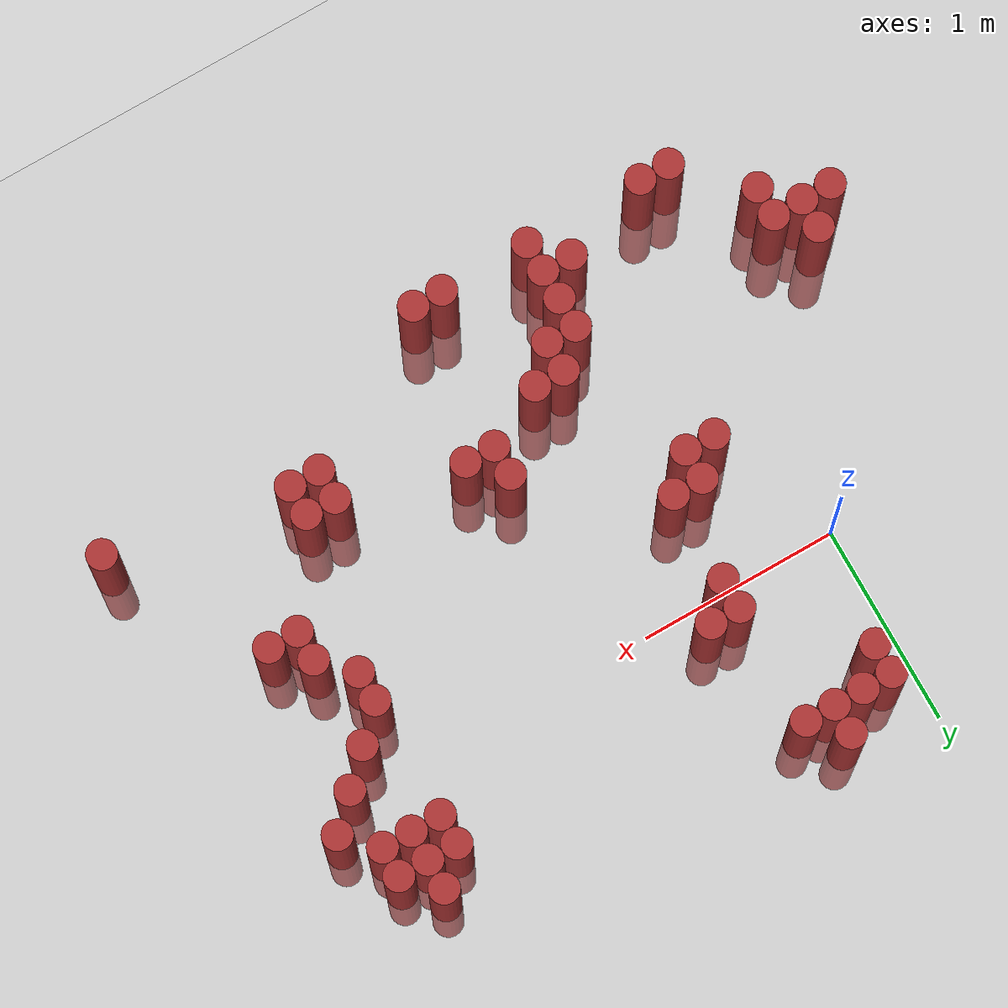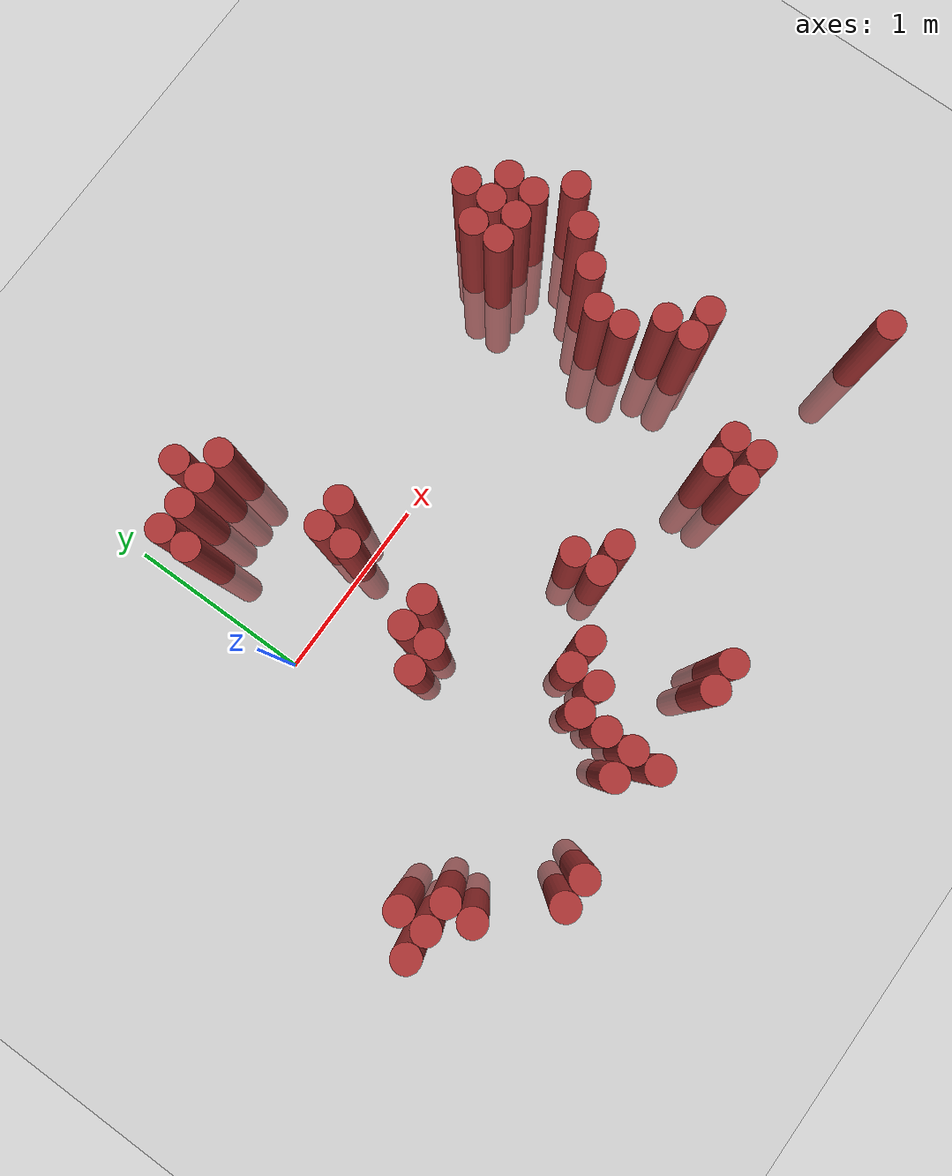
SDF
<sdf version="1.6">
 <world name="default">
  <model name="ground_plane">
   <static>1</static>
   <link name="link">
    <collision name="collision">
     <geometry><plane><normal>0 0 1</normal><size>100 100</size></plane></geometry>
     <surface><friction><ode><mu>100</mu><mu2>50</mu2></ode></friction></surface>
    </collision>
    <visual name="visual">
     <cast_shadows>0</cast_shadows>
     <geometry><plane><normal>0 0 1</normal><size>100 100</size></plane></geometry>
     <material>
      <script><uri>file://media/materials/scripts/gazebo.material</uri><name>Gazebo/Grey</name></script>
     </material>
    </visual>
   </link>
  </model>
  <model name="unit_cylinder_311">
   <static>1</static>
   <pose>-0.725000 -1.325000 0.000000 0.000000 0.000000 0.000000</pose>
   <link name="link">
    <inertial>
     <mass>1</mass>
     <inertia><ixx>0.145833</ixx><ixy>0</ixy><ixz>0</ixz><iyy>0.145833</iyy><iyz>0</iyz><izz>0.125</izz></inertia>
    </inertial>
    <collision name="collision">
     <geometry><cylinder><radius>0.075000</radius><length>1.5</length></cylinder></geometry>
    </collision>
    <visual name="visual">
     <geometry><cylinder><radius>0.075000</radius><length>1.5</length></cylinder></geometry>
     <material>
      <ambient>0.648000 0.192000 0.192000 1</ambient>
      <diffuse>0.648000 0.192000 0.192000 1</diffuse>
     </material>
     <material>
      <script><name>Gazebo/Grey</name><uri>file://media/materials/scripts/gazebo.material</uri></script>
     </material>
    </visual>
   </link>
  </model>
  <model name="unit_cylinder_314">
   <static>1</static>
   <pose>-0.575000 -1.325000 0.000000 0.000000 0.000000 0.000000</pose>
   <link name="link">
    <inertial>
     <mass>1</mass>
     <inertia><ixx>0.145833</ixx><ixy>0</ixy><ixz>0</ixz><iyy>0.145833</iyy><iyz>0</iyz><izz>0.125</izz></inertia>
    </inertial>
    <collision name="collision">
     <geometry><cylinder><radius>0.075000</radius><length>1.5</length></cylinder></geometry>
    </collision>
    <visual name="visual">
     <geometry><cylinder><radius>0.075000</radius><length>1.5</length></cylinder></geometry>
     <material>
      <ambient>0.648000 0.192000 0.192000 1</ambient>
      <diffuse>0.648000 0.192000 0.192000 1</diffuse>
     </material>
     <material>
      <script><name>Gazebo/Grey</name><uri>file://media/materials/scripts/gazebo.material</uri></script>
     </material>
    </visual>
   </link>
  </model>
  <model name="unit_cylinder_315">
   <static>1</static>
   <pose>-0.575000 -1.175000 0.000000 0.000000 0.000000 0.000000</pose>
   <link name="link">
    <inertial>
     <mass>1</mass>
     <inertia><ixx>0.145833</ixx><ixy>0</ixy><ixz>0</ixz><iyy>0.145833</iyy><iyz>0</iyz><izz>0.125</izz></inertia>
    </inertial>
    <collision name="collision">
     <geometry><cylinder><radius>0.075000</radius><length>1.5</length></cylinder></geometry>
    </collision>
    <visual name="visual">
     <geometry><cylinder><radius>0.075000</radius><length>1.5</length></cylinder></geometry>
     <material>
      <ambient>0.648000 0.192000 0.192000 1</ambient>
      <diffuse>0.648000 0.192000 0.192000 1</diffuse>
     </material>
     <material>
      <script><name>Gazebo/Grey</name><uri>file://media/materials/scripts/gazebo.material</uri></script>
     </material>
    </visual>
   </link>
  </model>
  <model name="unit_cylinder_319">
   <static>1</static>
   <pose>-0.425000 -1.475000 0.000000 0.000000 0.000000 0.000000</pose>
   <link name="link">
    <inertial>
     <mass>1</mass>
     <inertia><ixx>0.145833</ixx><ixy>0</ixy><ixz>0</ixz><iyy>0.145833</iyy><iyz>0</iyz><izz>0.125</izz></inertia>
    </inertial>
    <collision name="collision">
     <geometry><cylinder><radius>0.075000</radius><length>1.5</length></cylinder></geometry>
    </collision>
    <visual name="visual">
     <geometry><cylinder><radius>0.075000</radius><length>1.5</length></cylinder></geometry>
     <material>
      <ambient>0.648000 0.192000 0.192000 1</ambient>
      <diffuse>0.648000 0.192000 0.192000 1</diffuse>
     </material>
     <material>
      <script><name>Gazebo/Grey</name><uri>file://media/materials/scripts/gazebo.material</uri></script>
     </material>
    </visual>
   </link>
  </model>
  <model name="unit_cylinder_320">
   <static>1</static>
   <pose>-0.425000 -1.325000 0.000000 0.000000 0.000000 0.000000</pose>
   <link name="link">
    <inertial>
     <mass>1</mass>
     <inertia><ixx>0.145833</ixx><ixy>0</ixy><ixz>0</ixz><iyy>0.145833</iyy><iyz>0</iyz><izz>0.125</izz></inertia>
    </inertial>
    <collision name="collision">
     <geometry><cylinder><radius>0.075000</radius><length>1.5</length></cylinder></geometry>
    </collision>
    <visual name="visual">
     <geometry><cylinder><radius>0.075000</radius><length>1.5</length></cylinder></geometry>
     <material>
      <ambient>0.648000 0.192000 0.192000 1</ambient>
      <diffuse>0.648000 0.192000 0.192000 1</diffuse>
     </material>
     <material>
      <script><name>Gazebo/Grey</name><uri>file://media/materials/scripts/gazebo.material</uri></script>
     </material>
    </visual>
   </link>
  </model>
  <model name="unit_cylinder_326">
   <static>1</static>
   <pose>-0.125000 -1.775000 0.000000 0.000000 0.000000 0.000000</pose>
   <link name="link">
    <inertial>
     <mass>1</mass>
     <inertia><ixx>0.145833</ixx><ixy>0</ixy><ixz>0</ixz><iyy>0.145833</iyy><iyz>0</iyz><izz>0.125</izz></inertia>
    </inertial>
    <collision name="collision">
     <geometry><cylinder><radius>0.075000</radius><length>1.5</length></cylinder></geometry>
    </collision>
    <visual name="visual">
     <geometry><cylinder><radius>0.075000</radius><length>1.5</length></cylinder></geometry>
     <material>
      <ambient>0.648000 0.192000 0.192000 1</ambient>
      <diffuse>0.648000 0.192000 0.192000 1</diffuse>
     </material>
     <material>
      <script><name>Gazebo/Grey</name><uri>file://media/materials/scripts/gazebo.material</uri></script>
     </material>
    </visual>
   </link>
  </model>
  <model name="unit_cylinder_330">
   <static>1</static>
   <pose>0.025000 -1.775000 0.000000 0.000000 0.000000 0.000000</pose>
   <link name="link">
    <inertial>
     <mass>1</mass>
     <inertia><ixx>0.145833</ixx><ixy>0</ixy><ixz>0</ixz><iyy>0.145833</iyy><iyz>0</iyz><izz>0.125</izz></inertia>
    </inertial>
    <collision name="collision">
     <geometry><cylinder><radius>0.075000</radius><length>1.5</length></cylinder></geometry>
    </collision>
    <visual name="visual">
     <geometry><cylinder><radius>0.075000</radius><length>1.5</length></cylinder></geometry>
     <material>
      <ambient>0.648000 0.192000 0.192000 1</ambient>
      <diffuse>0.648000 0.192000 0.192000 1</diffuse>
     </material>
     <material>
      <script><name>Gazebo/Grey</name><uri>file://media/materials/scripts/gazebo.material</uri></script>
     </material>
    </visual>
   </link>
  </model>
  <model name="unit_cylinder_331">
   <static>1</static>
   <pose>0.175000 0.625000 0.000000 0.000000 0.000000 0.000000</pose>
   <link name="link">
    <inertial>
     <mass>1</mass>
     <inertia><ixx>0.145833</ixx><ixy>0</ixy><ixz>0</ixz><iyy>0.145833</iyy><iyz>0</iyz><izz>0.125</izz></inertia>
    </inertial>
    <collision name="collision">
     <geometry><cylinder><radius>0.075000</radius><length>1.5</length></cylinder></geometry>
    </collision>
    <visual name="visual">
     <geometry><cylinder><radius>0.075000</radius><length>1.5</length></cylinder></geometry>
     <material>
      <ambient>0.648000 0.192000 0.192000 1</ambient>
      <diffuse>0.648000 0.192000 0.192000 1</diffuse>
     </material>
     <material>
      <script><name>Gazebo/Grey</name><uri>file://media/materials/scripts/gazebo.material</uri></script>
     </material>
    </visual>
   </link>
  </model>
  <model name="unit_cylinder_332">
   <static>1</static>
   <pose>0.175000 0.775000 0.000000 0.000000 0.000000 0.000000</pose>
   <link name="link">
    <inertial>
     <mass>1</mass>
     <inertia><ixx>0.145833</ixx><ixy>0</ixy><ixz>0</ixz><iyy>0.145833</iyy><iyz>0</iyz><izz>0.125</izz></inertia>
    </inertial>
    <collision name="collision">
     <geometry><cylinder><radius>0.075000</radius><length>1.5</length></cylinder></geometry>
    </collision>
    <visual name="visual">
     <geometry><cylinder><radius>0.075000</radius><length>1.5</length></cylinder></geometry>
     <material>
      <ambient>0.648000 0.192000 0.192000 1</ambient>
      <diffuse>0.648000 0.192000 0.192000 1</diffuse>
     </material>
     <material>
      <script><name>Gazebo/Grey</name><uri>file://media/materials/scripts/gazebo.material</uri></script>
     </material>
    </visual>
   </link>
  </model>
  <model name="unit_cylinder_334">
   <static>1</static>
   <pose>0.325000 -0.575000 0.000000 0.000000 0.000000 0.000000</pose>
   <link name="link">
    <inertial>
     <mass>1</mass>
     <inertia><ixx>0.145833</ixx><ixy>0</ixy><ixz>0</ixz><iyy>0.145833</iyy><iyz>0</iyz><izz>0.125</izz></inertia>
    </inertial>
    <collision name="collision">
     <geometry><cylinder><radius>0.075000</radius><length>1.5</length></cylinder></geometry>
    </collision>
    <visual name="visual">
     <geometry><cylinder><radius>0.075000</radius><length>1.5</length></cylinder></geometry>
     <material>
      <ambient>0.648000 0.192000 0.192000 1</ambient>
      <diffuse>0.648000 0.192000 0.192000 1</diffuse>
     </material>
     <material>
      <script><name>Gazebo/Grey</name><uri>file://media/materials/scripts/gazebo.material</uri></script>
     </material>
    </visual>
   </link>
  </model>
  <model name="unit_cylinder_335">
   <static>1</static>
   <pose>0.325000 0.775000 0.000000 0.000000 0.000000 0.000000</pose>
   <link name="link">
    <inertial>
     <mass>1</mass>
     <inertia><ixx>0.145833</ixx><ixy>0</ixy><ixz>0</ixz><iyy>0.145833</iyy><iyz>0</iyz><izz>0.125</izz></inertia>
    </inertial>
    <collision name="collision">
     <geometry><cylinder><radius>0.075000</radius><length>1.5</length></cylinder></geometry>
    </collision>
    <visual name="visual">
     <geometry><cylinder><radius>0.075000</radius><length>1.5</length></cylinder></geometry>
     <material>
      <ambient>0.648000 0.192000 0.192000 1</ambient>
      <diffuse>0.648000 0.192000 0.192000 1</diffuse>
     </material>
     <material>
      <script><name>Gazebo/Grey</name><uri>file://media/materials/scripts/gazebo.material</uri></script>
     </material>
    </visual>
   </link>
  </model>
  <model name="unit_cylinder_340">
   <static>1</static>
   <pose>0.475000 -1.625000 0.000000 0.000000 0.000000 0.000000</pose>
   <link name="link">
    <inertial>
     <mass>1</mass>
     <inertia><ixx>0.145833</ixx><ixy>0</ixy><ixz>0</ixz><iyy>0.145833</iyy><iyz>0</iyz><izz>0.125</izz></inertia>
    </inertial>
    <collision name="collision">
     <geometry><cylinder><radius>0.075000</radius><length>1.5</length></cylinder></geometry>
    </collision>
    <visual name="visual">
     <geometry><cylinder><radius>0.075000</radius><length>1.5</length></cylinder></geometry>
     <material>
      <ambient>0.648000 0.192000 0.192000 1</ambient>
      <diffuse>0.648000 0.192000 0.192000 1</diffuse>
     </material>
     <material>
      <script><name>Gazebo/Grey</name><uri>file://media/materials/scripts/gazebo.material</uri></script>
     </material>
    </visual>
   </link>
  </model>
  <model name="unit_cylinder_341">
   <static>1</static>
   <pose>0.475000 -0.575000 0.000000 0.000000 0.000000 0.000000</pose>
   <link name="link">
    <inertial>
     <mass>1</mass>
     <inertia><ixx>0.145833</ixx><ixy>0</ixy><ixz>0</ixz><iyy>0.145833</iyy><iyz>0</iyz><izz>0.125</izz></inertia>
    </inertial>
    <collision name="collision">
     <geometry><cylinder><radius>0.075000</radius><length>1.5</length></cylinder></geometry>
    </collision>
    <visual name="visual">
     <geometry><cylinder><radius>0.075000</radius><length>1.5</length></cylinder></geometry>
     <material>
      <ambient>0.648000 0.192000 0.192000 1</ambient>
      <diffuse>0.648000 0.192000 0.192000 1</diffuse>
     </material>
     <material>
      <script><name>Gazebo/Grey</name><uri>file://media/materials/scripts/gazebo.material</uri></script>
     </material>
    </visual>
   </link>
  </model>
  <model name="unit_cylinder_342">
   <static>1</static>
   <pose>0.475000 -0.425000 0.000000 0.000000 0.000000 0.000000</pose>
   <link name="link">
    <inertial>
     <mass>1</mass>
     <inertia><ixx>0.145833</ixx><ixy>0</ixy><ixz>0</ixz><iyy>0.145833</iyy><iyz>0</iyz><izz>0.125</izz></inertia>
    </inertial>
    <collision name="collision">
     <geometry><cylinder><radius>0.075000</radius><length>1.5</length></cylinder></geometry>
    </collision>
    <visual name="visual">
     <geometry><cylinder><radius>0.075000</radius><length>1.5</length></cylinder></geometry>
     <material>
      <ambient>0.648000 0.192000 0.192000 1</ambient>
      <diffuse>0.648000 0.192000 0.192000 1</diffuse>
     </material>
     <material>
      <script><name>Gazebo/Grey</name><uri>file://media/materials/scripts/gazebo.material</uri></script>
     </material>
    </visual>
   </link>
  </model>
  <model name="unit_cylinder_343">
   <static>1</static>
   <pose>0.475000 0.775000 0.000000 0.000000 0.000000 0.000000</pose>
   <link name="link">
    <inertial>
     <mass>1</mass>
     <inertia><ixx>0.145833</ixx><ixy>0</ixy><ixz>0</ixz><iyy>0.145833</iyy><iyz>0</iyz><izz>0.125</izz></inertia>
    </inertial>
    <collision name="collision">
     <geometry><cylinder><radius>0.075000</radius><length>1.5</length></cylinder></geometry>
    </collision>
    <visual name="visual">
     <geometry><cylinder><radius>0.075000</radius><length>1.5</length></cylinder></geometry>
     <material>
      <ambient>0.648000 0.192000 0.192000 1</ambient>
      <diffuse>0.648000 0.192000 0.192000 1</diffuse>
     </material>
     <material>
      <script><name>Gazebo/Grey</name><uri>file://media/materials/scripts/gazebo.material</uri></script>
     </material>
    </visual>
   </link>
  </model>
  <model name="unit_cylinder_344">
   <static>1</static>
   <pose>0.475000 0.925000 0.000000 0.000000 0.000000 0.000000</pose>
   <link name="link">
    <inertial>
     <mass>1</mass>
     <inertia><ixx>0.145833</ixx><ixy>0</ixy><ixz>0</ixz><iyy>0.145833</iyy><iyz>0</iyz><izz>0.125</izz></inertia>
    </inertial>
    <collision name="collision">
     <geometry><cylinder><radius>0.075000</radius><length>1.5</length></cylinder></geometry>
    </collision>
    <visual name="visual">
     <geometry><cylinder><radius>0.075000</radius><length>1.5</length></cylinder></geometry>
     <material>
      <ambient>0.648000 0.192000 0.192000 1</ambient>
      <diffuse>0.648000 0.192000 0.192000 1</diffuse>
     </material>
     <material>
      <script><name>Gazebo/Grey</name><uri>file://media/materials/scripts/gazebo.material</uri></script>
     </material>
    </visual>
   </link>
  </model>
  <model name="unit_cylinder_352">
   <static>1</static>
   <pose>0.625000 -1.775000 0.000000 0.000000 0.000000 0.000000</pose>
   <link name="link">
    <inertial>
     <mass>1</mass>
     <inertia><ixx>0.145833</ixx><ixy>0</ixy><ixz>0</ixz><iyy>0.145833</iyy><iyz>0</iyz><izz>0.125</izz></inertia>
    </inertial>
    <collision name="collision">
     <geometry><cylinder><radius>0.075000</radius><length>1.5</length></cylinder></geometry>
    </collision>
    <visual name="visual">
     <geometry><cylinder><radius>0.075000</radius><length>1.5</length></cylinder></geometry>
     <material>
      <ambient>0.648000 0.192000 0.192000 1</ambient>
      <diffuse>0.648000 0.192000 0.192000 1</diffuse>
     </material>
     <material>
      <script><name>Gazebo/Grey</name><uri>file://media/materials/scripts/gazebo.material</uri></script>
     </material>
    </visual>
   </link>
  </model>
  <model name="unit_cylinder_353">
   <static>1</static>
   <pose>0.625000 -1.625000 0.000000 0.000000 0.000000 0.000000</pose>
   <link name="link">
    <inertial>
     <mass>1</mass>
     <inertia><ixx>0.145833</ixx><ixy>0</ixy><ixz>0</ixz><iyy>0.145833</iyy><iyz>0</iyz><izz>0.125</izz></inertia>
    </inertial>
    <collision name="collision">
     <geometry><cylinder><radius>0.075000</radius><length>1.5</length></cylinder></geometry>
    </collision>
    <visual name="visual">
     <geometry><cylinder><radius>0.075000</radius><length>1.5</length></cylinder></geometry>
     <material>
      <ambient>0.648000 0.192000 0.192000 1</ambient>
      <diffuse>0.648000 0.192000 0.192000 1</diffuse>
     </material>
     <material>
      <script><name>Gazebo/Grey</name><uri>file://media/materials/scripts/gazebo.material</uri></script>
     </material>
    </visual>
   </link>
  </model>
  <model name="unit_cylinder_354">
   <static>1</static>
   <pose>0.625000 -1.475000 0.000000 0.000000 0.000000 0.000000</pose>
   <link name="link">
    <inertial>
     <mass>1</mass>
     <inertia><ixx>0.145833</ixx><ixy>0</ixy><ixz>0</ixz><iyy>0.145833</iyy><iyz>0</iyz><izz>0.125</izz></inertia>
    </inertial>
    <collision name="collision">
     <geometry><cylinder><radius>0.075000</radius><length>1.5</length></cylinder></geometry>
    </collision>
    <visual name="visual">
     <geometry><cylinder><radius>0.075000</radius><length>1.5</length></cylinder></geometry>
     <material>
      <ambient>0.648000 0.192000 0.192000 1</ambient>
      <diffuse>0.648000 0.192000 0.192000 1</diffuse>
     </material>
     <material>
      <script><name>Gazebo/Grey</name><uri>file://media/materials/scripts/gazebo.material</uri></script>
     </material>
    </visual>
   </link>
  </model>
  <model name="unit_cylinder_355">
   <static>1</static>
   <pose>0.625000 -1.325000 0.000000 0.000000 0.000000 0.000000</pose>
   <link name="link">
    <inertial>
     <mass>1</mass>
     <inertia><ixx>0.145833</ixx><ixy>0</ixy><ixz>0</ixz><iyy>0.145833</iyy><iyz>0</iyz><izz>0.125</izz></inertia>
    </inertial>
    <collision name="collision">
     <geometry><cylinder><radius>0.075000</radius><length>1.5</length></cylinder></geometry>
    </collision>
    <visual name="visual">
     <geometry><cylinder><radius>0.075000</radius><length>1.5</length></cylinder></geometry>
     <material>
      <ambient>0.648000 0.192000 0.192000 1</ambient>
      <diffuse>0.648000 0.192000 0.192000 1</diffuse>
     </material>
     <material>
      <script><name>Gazebo/Grey</name><uri>file://media/materials/scripts/gazebo.material</uri></script>
     </material>
    </visual>
   </link>
  </model>
  <model name="unit_cylinder_356">
   <static>1</static>
   <pose>0.625000 -0.425000 0.000000 0.000000 0.000000 0.000000</pose>
   <link name="link">
    <inertial>
     <mass>1</mass>
     <inertia><ixx>0.145833</ixx><ixy>0</ixy><ixz>0</ixz><iyy>0.145833</iyy><iyz>0</iyz><izz>0.125</izz></inertia>
    </inertial>
    <collision name="collision">
     <geometry><cylinder><radius>0.075000</radius><length>1.5</length></cylinder></geometry>
    </collision>
    <visual name="visual">
     <geometry><cylinder><radius>0.075000</radius><length>1.5</length></cylinder></geometry>
     <material>
      <ambient>0.648000 0.192000 0.192000 1</ambient>
      <diffuse>0.648000 0.192000 0.192000 1</diffuse>
     </material>
     <material>
      <script><name>Gazebo/Grey</name><uri>file://media/materials/scripts/gazebo.material</uri></script>
     </material>
    </visual>
   </link>
  </model>
  <model name="unit_cylinder_357">
   <static>1</static>
   <pose>0.625000 0.025000 0.000000 0.000000 0.000000 0.000000</pose>
   <link name="link">
    <inertial>
     <mass>1</mass>
     <inertia><ixx>0.145833</ixx><ixy>0</ixy><ixz>0</ixz><iyy>0.145833</iyy><iyz>0</iyz><izz>0.125</izz></inertia>
    </inertial>
    <collision name="collision">
     <geometry><cylinder><radius>0.075000</radius><length>1.5</length></cylinder></geometry>
    </collision>
    <visual name="visual">
     <geometry><cylinder><radius>0.075000</radius><length>1.5</length></cylinder></geometry>
     <material>
      <ambient>0.648000 0.192000 0.192000 1</ambient>
      <diffuse>0.648000 0.192000 0.192000 1</diffuse>
     </material>
     <material>
      <script><name>Gazebo/Grey</name><uri>file://media/materials/scripts/gazebo.material</uri></script>
     </material>
    </visual>
   </link>
  </model>
  <model name="unit_cylinder_358">
   <static>1</static>
   <pose>0.625000 0.175000 0.000000 0.000000 0.000000 0.000000</pose>
   <link name="link">
    <inertial>
     <mass>1</mass>
     <inertia><ixx>0.145833</ixx><ixy>0</ixy><ixz>0</ixz><iyy>0.145833</iyy><iyz>0</iyz><izz>0.125</izz></inertia>
    </inertial>
    <collision name="collision">
     <geometry><cylinder><radius>0.075000</radius><length>1.5</length></cylinder></geometry>
    </collision>
    <visual name="visual">
     <geometry><cylinder><radius>0.075000</radius><length>1.5</length></cylinder></geometry>
     <material>
      <ambient>0.648000 0.192000 0.192000 1</ambient>
      <diffuse>0.648000 0.192000 0.192000 1</diffuse>
     </material>
     <material>
      <script><name>Gazebo/Grey</name><uri>file://media/materials/scripts/gazebo.material</uri></script>
     </material>
    </visual>
   </link>
  </model>
  <model name="unit_cylinder_359">
   <static>1</static>
   <pose>0.625000 0.775000 0.000000 0.000000 0.000000 0.000000</pose>
   <link name="link">
    <inertial>
     <mass>1</mass>
     <inertia><ixx>0.145833</ixx><ixy>0</ixy><ixz>0</ixz><iyy>0.145833</iyy><iyz>0</iyz><izz>0.125</izz></inertia>
    </inertial>
    <collision name="collision">
     <geometry><cylinder><radius>0.075000</radius><length>1.5</length></cylinder></geometry>
    </collision>
    <visual name="visual">
     <geometry><cylinder><radius>0.075000</radius><length>1.5</length></cylinder></geometry>
     <material>
      <ambient>0.648000 0.192000 0.192000 1</ambient>
      <diffuse>0.648000 0.192000 0.192000 1</diffuse>
     </material>
     <material>
      <script><name>Gazebo/Grey</name><uri>file://media/materials/scripts/gazebo.material</uri></script>
     </material>
    </visual>
   </link>
  </model>
  <model name="unit_cylinder_365">
   <static>1</static>
   <pose>0.775000 -1.325000 0.000000 0.000000 0.000000 0.000000</pose>
   <link name="link">
    <inertial>
     <mass>1</mass>
     <inertia><ixx>0.145833</ixx><ixy>0</ixy><ixz>0</ixz><iyy>0.145833</iyy><iyz>0</iyz><izz>0.125</izz></inertia>
    </inertial>
    <collision name="collision">
     <geometry><cylinder><radius>0.075000</radius><length>1.5</length></cylinder></geometry>
    </collision>
    <visual name="visual">
     <geometry><cylinder><radius>0.075000</radius><length>1.5</length></cylinder></geometry>
     <material>
      <ambient>0.648000 0.192000 0.192000 1</ambient>
      <diffuse>0.648000 0.192000 0.192000 1</diffuse>
     </material>
     <material>
      <script><name>Gazebo/Grey</name><uri>file://media/materials/scripts/gazebo.material</uri></script>
     </material>
    </visual>
   </link>
  </model>
  <model name="unit_cylinder_366">
   <static>1</static>
   <pose>0.775000 -1.175000 0.000000 0.000000 0.000000 0.000000</pose>
   <link name="link">
    <inertial>
     <mass>1</mass>
     <inertia><ixx>0.145833</ixx><ixy>0</ixy><ixz>0</ixz><iyy>0.145833</iyy><iyz>0</iyz><izz>0.125</izz></inertia>
    </inertial>
    <collision name="collision">
     <geometry><cylinder><radius>0.075000</radius><length>1.5</length></cylinder></geometry>
    </collision>
    <visual name="visual">
     <geometry><cylinder><radius>0.075000</radius><length>1.5</length></cylinder></geometry>
     <material>
      <ambient>0.648000 0.192000 0.192000 1</ambient>
      <diffuse>0.648000 0.192000 0.192000 1</diffuse>
     </material>
     <material>
      <script><name>Gazebo/Grey</name><uri>file://media/materials/scripts/gazebo.material</uri></script>
     </material>
    </visual>
   </link>
  </model>
  <model name="unit_cylinder_367">
   <static>1</static>
   <pose>0.775000 0.175000 0.000000 0.000000 0.000000 0.000000</pose>
   <link name="link">
    <inertial>
     <mass>1</mass>
     <inertia><ixx>0.145833</ixx><ixy>0</ixy><ixz>0</ixz><iyy>0.145833</iyy><iyz>0</iyz><izz>0.125</izz></inertia>
    </inertial>
    <collision name="collision">
     <geometry><cylinder><radius>0.075000</radius><length>1.5</length></cylinder></geometry>
    </collision>
    <visual name="visual">
     <geometry><cylinder><radius>0.075000</radius><length>1.5</length></cylinder></geometry>
     <material>
      <ambient>0.648000 0.192000 0.192000 1</ambient>
      <diffuse>0.648000 0.192000 0.192000 1</diffuse>
     </material>
     <material>
      <script><name>Gazebo/Grey</name><uri>file://media/materials/scripts/gazebo.material</uri></script>
     </material>
    </visual>
   </link>
  </model>
  <model name="unit_cylinder_368">
   <static>1</static>
   <pose>0.925000 -1.175000 0.000000 0.000000 0.000000 0.000000</pose>
   <link name="link">
    <inertial>
     <mass>1</mass>
     <inertia><ixx>0.145833</ixx><ixy>0</ixy><ixz>0</ixz><iyy>0.145833</iyy><iyz>0</iyz><izz>0.125</izz></inertia>
    </inertial>
    <collision name="collision">
     <geometry><cylinder><radius>0.075000</radius><length>1.5</length></cylinder></geometry>
    </collision>
    <visual name="visual">
     <geometry><cylinder><radius>0.075000</radius><length>1.5</length></cylinder></geometry>
     <material>
      <ambient>0.648000 0.192000 0.192000 1</ambient>
      <diffuse>0.648000 0.192000 0.192000 1</diffuse>
     </material>
     <material>
      <script><name>Gazebo/Grey</name><uri>file://media/materials/scripts/gazebo.material</uri></script>
     </material>
    </visual>
   </link>
  </model>
  <model name="unit_cylinder_372">
   <static>1</static>
   <pose>1.075000 -1.775000 0.000000 0.000000 0.000000 0.000000</pose>
   <link name="link">
    <inertial>
     <mass>1</mass>
     <inertia><ixx>0.145833</ixx><ixy>0</ixy><ixz>0</ixz><iyy>0.145833</iyy><iyz>0</iyz><izz>0.125</izz></inertia>
    </inertial>
    <collision name="collision">
     <geometry><cylinder><radius>0.075000</radius><length>1.5</length></cylinder></geometry>
    </collision>
    <visual name="visual">
     <geometry><cylinder><radius>0.075000</radius><length>1.5</length></cylinder></geometry>
     <material>
      <ambient>0.648000 0.192000 0.192000 1</ambient>
      <diffuse>0.648000 0.192000 0.192000 1</diffuse>
     </material>
     <material>
      <script><name>Gazebo/Grey</name><uri>file://media/materials/scripts/gazebo.material</uri></script>
     </material>
    </visual>
   </link>
  </model>
  <model name="unit_cylinder_375">
   <static>1</static>
   <pose>1.225000 -1.775000 0.000000 0.000000 0.000000 0.000000</pose>
   <link name="link">
    <inertial>
     <mass>1</mass>
     <inertia><ixx>0.145833</ixx><ixy>0</ixy><ixz>0</ixz><iyy>0.145833</iyy><iyz>0</iyz><izz>0.125</izz></inertia>
    </inertial>
    <collision name="collision">
     <geometry><cylinder><radius>0.075000</radius><length>1.5</length></cylinder></geometry>
    </collision>
    <visual name="visual">
     <geometry><cylinder><radius>0.075000</radius><length>1.5</length></cylinder></geometry>
     <material>
      <ambient>0.648000 0.192000 0.192000 1</ambient>
      <diffuse>0.648000 0.192000 0.192000 1</diffuse>
     </material>
     <material>
      <script><name>Gazebo/Grey</name><uri>file://media/materials/scripts/gazebo.material</uri></script>
     </material>
    </visual>
   </link>
  </model>
  <model name="unit_cylinder_376">
   <static>1</static>
   <pose>1.225000 -1.025000 0.000000 0.000000 0.000000 0.000000</pose>
   <link name="link">
    <inertial>
     <mass>1</mass>
     <inertia><ixx>0.145833</ixx><ixy>0</ixy><ixz>0</ixz><iyy>0.145833</iyy><iyz>0</iyz><izz>0.125</izz></inertia>
    </inertial>
    <collision name="collision">
     <geometry><cylinder><radius>0.075000</radius><length>1.5</length></cylinder></geometry>
    </collision>
    <visual name="visual">
     <geometry><cylinder><radius>0.075000</radius><length>1.5</length></cylinder></geometry>
     <material>
      <ambient>0.648000 0.192000 0.192000 1</ambient>
      <diffuse>0.648000 0.192000 0.192000 1</diffuse>
     </material>
     <material>
      <script><name>Gazebo/Grey</name><uri>file://media/materials/scripts/gazebo.material</uri></script>
     </material>
    </visual>
   </link>
  </model>
  <model name="unit_cylinder_377">
   <static>1</static>
   <pose>1.225000 -0.875000 0.000000 0.000000 0.000000 0.000000</pose>
   <link name="link">
    <inertial>
     <mass>1</mass>
     <inertia><ixx>0.145833</ixx><ixy>0</ixy><ixz>0</ixz><iyy>0.145833</iyy><iyz>0</iyz><izz>0.125</izz></inertia>
    </inertial>
    <collision name="collision">
     <geometry><cylinder><radius>0.075000</radius><length>1.5</length></cylinder></geometry>
    </collision>
    <visual name="visual">
     <geometry><cylinder><radius>0.075000</radius><length>1.5</length></cylinder></geometry>
     <material>
      <ambient>0.648000 0.192000 0.192000 1</ambient>
      <diffuse>0.648000 0.192000 0.192000 1</diffuse>
     </material>
     <material>
      <script><name>Gazebo/Grey</name><uri>file://media/materials/scripts/gazebo.material</uri></script>
     </material>
    </visual>
   </link>
  </model>
  <model name="unit_cylinder_378">
   <static>1</static>
   <pose>1.375000 -1.025000 0.000000 0.000000 0.000000 0.000000</pose>
   <link name="link">
    <inertial>
     <mass>1</mass>
     <inertia><ixx>0.145833</ixx><ixy>0</ixy><ixz>0</ixz><iyy>0.145833</iyy><iyz>0</iyz><izz>0.125</izz></inertia>
    </inertial>
    <collision name="collision">
     <geometry><cylinder><radius>0.075000</radius><length>1.5</length></cylinder></geometry>
    </collision>
    <visual name="visual">
     <geometry><cylinder><radius>0.075000</radius><length>1.5</length></cylinder></geometry>
     <material>
      <ambient>0.648000 0.192000 0.192000 1</ambient>
      <diffuse>0.648000 0.192000 0.192000 1</diffuse>
     </material>
     <material>
      <script><name>Gazebo/Grey</name><uri>file://media/materials/scripts/gazebo.material</uri></script>
     </material>
    </visual>
   </link>
  </model>
  <model name="unit_cylinder_392">
   <static>1</static>
   <pose>1.975000 -1.325000 0.000000 0.000000 0.000000 0.000000</pose>
   <link name="link">
    <inertial>
     <mass>1</mass>
     <inertia><ixx>0.145833</ixx><ixy>0</ixy><ixz>0</ixz><iyy>0.145833</iyy><iyz>0</iyz><izz>0.125</izz></inertia>
    </inertial>
    <collision name="collision">
     <geometry><cylinder><radius>0.075000</radius><length>1.5</length></cylinder></geometry>
    </collision>
    <visual name="visual">
     <geometry><cylinder><radius>0.075000</radius><length>1.5</length></cylinder></geometry>
     <material>
      <ambient>0.648000 0.192000 0.192000 1</ambient>
      <diffuse>0.648000 0.192000 0.192000 1</diffuse>
     </material>
     <material>
      <script><name>Gazebo/Grey</name><uri>file://media/materials/scripts/gazebo.material</uri></script>
     </material>
    </visual>
   </link>
  </model>
  <model name="unit_cylinder_393">
   <static>1</static>
   <pose>1.975000 -1.175000 0.000000 0.000000 0.000000 0.000000</pose>
   <link name="link">
    <inertial>
     <mass>1</mass>
     <inertia><ixx>0.145833</ixx><ixy>0</ixy><ixz>0</ixz><iyy>0.145833</iyy><iyz>0</iyz><izz>0.125</izz></inertia>
    </inertial>
    <collision name="collision">
     <geometry><cylinder><radius>0.075000</radius><length>1.5</length></cylinder></geometry>
    </collision>
    <visual name="visual">
     <geometry><cylinder><radius>0.075000</radius><length>1.5</length></cylinder></geometry>
     <material>
      <ambient>0.648000 0.192000 0.192000 1</ambient>
      <diffuse>0.648000 0.192000 0.192000 1</diffuse>
     </material>
     <material>
      <script><name>Gazebo/Grey</name><uri>file://media/materials/scripts/gazebo.material</uri></script>
     </material>
    </visual>
   </link>
  </model>
  <model name="unit_cylinder_397">
   <static>1</static>
   <pose>2.125000 -1.325000 0.000000 0.000000 0.000000 0.000000</pose>
   <link name="link">
    <inertial>
     <mass>1</mass>
     <inertia><ixx>0.145833</ixx><ixy>0</ixy><ixz>0</ixz><iyy>0.145833</iyy><iyz>0</iyz><izz>0.125</izz></inertia>
    </inertial>
    <collision name="collision">
     <geometry><cylinder><radius>0.075000</radius><length>1.5</length></cylinder></geometry>
    </collision>
    <visual name="visual">
     <geometry><cylinder><radius>0.075000</radius><length>1.5</length></cylinder></geometry>
     <material>
      <ambient>0.648000 0.192000 0.192000 1</ambient>
      <diffuse>0.648000 0.192000 0.192000 1</diffuse>
     </material>
     <material>
      <script><name>Gazebo/Grey</name><uri>file://media/materials/scripts/gazebo.material</uri></script>
     </material>
    </visual>
   </link>
  </model>
  <model name="unit_cylinder_398">
   <static>1</static>
   <pose>2.125000 -1.175000 0.000000 0.000000 0.000000 0.000000</pose>
   <link name="link">
    <inertial>
     <mass>1</mass>
     <inertia><ixx>0.145833</ixx><ixy>0</ixy><ixz>0</ixz><iyy>0.145833</iyy><iyz>0</iyz><izz>0.125</izz></inertia>
    </inertial>
    <collision name="collision">
     <geometry><cylinder><radius>0.075000</radius><length>1.5</length></cylinder></geometry>
    </collision>
    <visual name="visual">
     <geometry><cylinder><radius>0.075000</radius><length>1.5</length></cylinder></geometry>
     <material>
      <ambient>0.648000 0.192000 0.192000 1</ambient>
      <diffuse>0.648000 0.192000 0.192000 1</diffuse>
     </material>
     <material>
      <script><name>Gazebo/Grey</name><uri>file://media/materials/scripts/gazebo.material</uri></script>
     </material>
    </visual>
   </link>
  </model>
  <model name="unit_cylinder_403">
   <static>1</static>
   <pose>2.275000 -0.425000 0.000000 0.000000 0.000000 0.000000</pose>
   <link name="link">
    <inertial>
     <mass>1</mass>
     <inertia><ixx>0.145833</ixx><ixy>0</ixy><ixz>0</ixz><iyy>0.145833</iyy><iyz>0</iyz><izz>0.125</izz></inertia>
    </inertial>
    <collision name="collision">
     <geometry><cylinder><radius>0.075000</radius><length>1.5</length></cylinder></geometry>
    </collision>
    <visual name="visual">
     <geometry><cylinder><radius>0.075000</radius><length>1.5</length></cylinder></geometry>
     <material>
      <ambient>0.648000 0.192000 0.192000 1</ambient>
      <diffuse>0.648000 0.192000 0.192000 1</diffuse>
     </material>
     <material>
      <script><name>Gazebo/Grey</name><uri>file://media/materials/scripts/gazebo.material</uri></script>
     </material>
    </visual>
   </link>
  </model>
  <model name="unit_cylinder_404">
   <static>1</static>
   <pose>2.275000 -0.275000 0.000000 0.000000 0.000000 0.000000</pose>
   <link name="link">
    <inertial>
     <mass>1</mass>
     <inertia><ixx>0.145833</ixx><ixy>0</ixy><ixz>0</ixz><iyy>0.145833</iyy><iyz>0</iyz><izz>0.125</izz></inertia>
    </inertial>
    <collision name="collision">
     <geometry><cylinder><radius>0.075000</radius><length>1.5</length></cylinder></geometry>
    </collision>
    <visual name="visual">
     <geometry><cylinder><radius>0.075000</radius><length>1.5</length></cylinder></geometry>
     <material>
      <ambient>0.648000 0.192000 0.192000 1</ambient>
      <diffuse>0.648000 0.192000 0.192000 1</diffuse>
     </material>
     <material>
      <script><name>Gazebo/Grey</name><uri>file://media/materials/scripts/gazebo.material</uri></script>
     </material>
    </visual>
   </link>
  </model>
  <model name="unit_cylinder_405">
   <static>1</static>
   <pose>2.275000 0.325000 0.000000 0.000000 0.000000 0.000000</pose>
   <link name="link">
    <inertial>
     <mass>1</mass>
     <inertia><ixx>0.145833</ixx><ixy>0</ixy><ixz>0</ixz><iyy>0.145833</iyy><iyz>0</iyz><izz>0.125</izz></inertia>
    </inertial>
    <collision name="collision">
     <geometry><cylinder><radius>0.075000</radius><length>1.5</length></cylinder></geometry>
    </collision>
    <visual name="visual">
     <geometry><cylinder><radius>0.075000</radius><length>1.5</length></cylinder></geometry>
     <material>
      <ambient>0.648000 0.192000 0.192000 1</ambient>
      <diffuse>0.648000 0.192000 0.192000 1</diffuse>
     </material>
     <material>
      <script><name>Gazebo/Grey</name><uri>file://media/materials/scripts/gazebo.material</uri></script>
     </material>
    </visual>
   </link>
  </model>
  <model name="unit_cylinder_406">
   <static>1</static>
   <pose>2.275000 0.475000 0.000000 0.000000 0.000000 0.000000</pose>
   <link name="link">
    <inertial>
     <mass>1</mass>
     <inertia><ixx>0.145833</ixx><ixy>0</ixy><ixz>0</ixz><iyy>0.145833</iyy><iyz>0</iyz><izz>0.125</izz></inertia>
    </inertial>
    <collision name="collision">
     <geometry><cylinder><radius>0.075000</radius><length>1.5</length></cylinder></geometry>
    </collision>
    <visual name="visual">
     <geometry><cylinder><radius>0.075000</radius><length>1.5</length></cylinder></geometry>
     <material>
      <ambient>0.648000 0.192000 0.192000 1</ambient>
      <diffuse>0.648000 0.192000 0.192000 1</diffuse>
     </material>
     <material>
      <script><name>Gazebo/Grey</name><uri>file://media/materials/scripts/gazebo.material</uri></script>
     </material>
    </visual>
   </link>
  </model>
  <model name="unit_cylinder_409">
   <static>1</static>
   <pose>2.425000 -0.725000 0.000000 0.000000 0.000000 0.000000</pose>
   <link name="link">
    <inertial>
     <mass>1</mass>
     <inertia><ixx>0.145833</ixx><ixy>0</ixy><ixz>0</ixz><iyy>0.145833</iyy><iyz>0</iyz><izz>0.125</izz></inertia>
    </inertial>
    <collision name="collision">
     <geometry><cylinder><radius>0.075000</radius><length>1.5</length></cylinder></geometry>
    </collision>
    <visual name="visual">
     <geometry><cylinder><radius>0.075000</radius><length>1.5</length></cylinder></geometry>
     <material>
      <ambient>0.648000 0.192000 0.192000 1</ambient>
      <diffuse>0.648000 0.192000 0.192000 1</diffuse>
     </material>
     <material>
      <script><name>Gazebo/Grey</name><uri>file://media/materials/scripts/gazebo.material</uri></script>
     </material>
    </visual>
   </link>
  </model>
  <model name="unit_cylinder_410">
   <static>1</static>
   <pose>2.425000 -0.575000 0.000000 0.000000 0.000000 0.000000</pose>
   <link name="link">
    <inertial>
     <mass>1</mass>
     <inertia><ixx>0.145833</ixx><ixy>0</ixy><ixz>0</ixz><iyy>0.145833</iyy><iyz>0</iyz><izz>0.125</izz></inertia>
    </inertial>
    <collision name="collision">
     <geometry><cylinder><radius>0.075000</radius><length>1.5</length></cylinder></geometry>
    </collision>
    <visual name="visual">
     <geometry><cylinder><radius>0.075000</radius><length>1.5</length></cylinder></geometry>
     <material>
      <ambient>0.648000 0.192000 0.192000 1</ambient>
      <diffuse>0.648000 0.192000 0.192000 1</diffuse>
     </material>
     <material>
      <script><name>Gazebo/Grey</name><uri>file://media/materials/scripts/gazebo.material</uri></script>
     </material>
    </visual>
   </link>
  </model>
  <model name="unit_cylinder_411">
   <static>1</static>
   <pose>2.425000 -0.125000 0.000000 0.000000 0.000000 0.000000</pose>
   <link name="link">
    <inertial>
     <mass>1</mass>
     <inertia><ixx>0.145833</ixx><ixy>0</ixy><ixz>0</ixz><iyy>0.145833</iyy><iyz>0</iyz><izz>0.125</izz></inertia>
    </inertial>
    <collision name="collision">
     <geometry><cylinder><radius>0.075000</radius><length>1.5</length></cylinder></geometry>
    </collision>
    <visual name="visual">
     <geometry><cylinder><radius>0.075000</radius><length>1.5</length></cylinder></geometry>
     <material>
      <ambient>0.648000 0.192000 0.192000 1</ambient>
      <diffuse>0.648000 0.192000 0.192000 1</diffuse>
     </material>
     <material>
      <script><name>Gazebo/Grey</name><uri>file://media/materials/scripts/gazebo.material</uri></script>
     </material>
    </visual>
   </link>
  </model>
  <model name="unit_cylinder_412">
   <static>1</static>
   <pose>2.425000 0.325000 0.000000 0.000000 0.000000 0.000000</pose>
   <link name="link">
    <inertial>
     <mass>1</mass>
     <inertia><ixx>0.145833</ixx><ixy>0</ixy><ixz>0</ixz><iyy>0.145833</iyy><iyz>0</iyz><izz>0.125</izz></inertia>
    </inertial>
    <collision name="collision">
     <geometry><cylinder><radius>0.075000</radius><length>1.5</length></cylinder></geometry>
    </collision>
    <visual name="visual">
     <geometry><cylinder><radius>0.075000</radius><length>1.5</length></cylinder></geometry>
     <material>
      <ambient>0.648000 0.192000 0.192000 1</ambient>
      <diffuse>0.648000 0.192000 0.192000 1</diffuse>
     </material>
     <material>
      <script><name>Gazebo/Grey</name><uri>file://media/materials/scripts/gazebo.material</uri></script>
     </material>
    </visual>
   </link>
  </model>
  <model name="unit_cylinder_413">
   <static>1</static>
   <pose>2.425000 0.475000 0.000000 0.000000 0.000000 0.000000</pose>
   <link name="link">
    <inertial>
     <mass>1</mass>
     <inertia><ixx>0.145833</ixx><ixy>0</ixy><ixz>0</ixz><iyy>0.145833</iyy><iyz>0</iyz><izz>0.125</izz></inertia>
    </inertial>
    <collision name="collision">
     <geometry><cylinder><radius>0.075000</radius><length>1.5</length></cylinder></geometry>
    </collision>
    <visual name="visual">
     <geometry><cylinder><radius>0.075000</radius><length>1.5</length></cylinder></geometry>
     <material>
      <ambient>0.648000 0.192000 0.192000 1</ambient>
      <diffuse>0.648000 0.192000 0.192000 1</diffuse>
     </material>
     <material>
      <script><name>Gazebo/Grey</name><uri>file://media/materials/scripts/gazebo.material</uri></script>
     </material>
    </visual>
   </link>
  </model>
  <model name="unit_cylinder_414">
   <static>1</static>
   <pose>2.425000 0.625000 0.000000 0.000000 0.000000 0.000000</pose>
   <link name="link">
    <inertial>
     <mass>1</mass>
     <inertia><ixx>0.145833</ixx><ixy>0</ixy><ixz>0</ixz><iyy>0.145833</iyy><iyz>0</iyz><izz>0.125</izz></inertia>
    </inertial>
    <collision name="collision">
     <geometry><cylinder><radius>0.075000</radius><length>1.5</length></cylinder></geometry>
    </collision>
    <visual name="visual">
     <geometry><cylinder><radius>0.075000</radius><length>1.5</length></cylinder></geometry>
     <material>
      <ambient>0.648000 0.192000 0.192000 1</ambient>
      <diffuse>0.648000 0.192000 0.192000 1</diffuse>
     </material>
     <material>
      <script><name>Gazebo/Grey</name><uri>file://media/materials/scripts/gazebo.material</uri></script>
     </material>
    </visual>
   </link>
  </model>
  <model name="unit_cylinder_417">
   <static>1</static>
   <pose>2.575000 -0.725000 0.000000 0.000000 0.000000 0.000000</pose>
   <link name="link">
    <inertial>
     <mass>1</mass>
     <inertia><ixx>0.145833</ixx><ixy>0</ixy><ixz>0</ixz><iyy>0.145833</iyy><iyz>0</iyz><izz>0.125</izz></inertia>
    </inertial>
    <collision name="collision">
     <geometry><cylinder><radius>0.075000</radius><length>1.5</length></cylinder></geometry>
    </collision>
    <visual name="visual">
     <geometry><cylinder><radius>0.075000</radius><length>1.5</length></cylinder></geometry>
     <material>
      <ambient>0.648000 0.192000 0.192000 1</ambient>
      <diffuse>0.648000 0.192000 0.192000 1</diffuse>
     </material>
     <material>
      <script><name>Gazebo/Grey</name><uri>file://media/materials/scripts/gazebo.material</uri></script>
     </material>
    </visual>
   </link>
  </model>
  <model name="unit_cylinder_418">
   <static>1</static>
   <pose>2.575000 0.025000 0.000000 0.000000 0.000000 0.000000</pose>
   <link name="link">
    <inertial>
     <mass>1</mass>
     <inertia><ixx>0.145833</ixx><ixy>0</ixy><ixz>0</ixz><iyy>0.145833</iyy><iyz>0</iyz><izz>0.125</izz></inertia>
    </inertial>
    <collision name="collision">
     <geometry><cylinder><radius>0.075000</radius><length>1.5</length></cylinder></geometry>
    </collision>
    <visual name="visual">
     <geometry><cylinder><radius>0.075000</radius><length>1.5</length></cylinder></geometry>
     <material>
      <ambient>0.648000 0.192000 0.192000 1</ambient>
      <diffuse>0.648000 0.192000 0.192000 1</diffuse>
     </material>
     <material>
      <script><name>Gazebo/Grey</name><uri>file://media/materials/scripts/gazebo.material</uri></script>
     </material>
    </visual>
   </link>
  </model>
  <model name="unit_cylinder_419">
   <static>1</static>
   <pose>2.575000 0.325000 0.000000 0.000000 0.000000 0.000000</pose>
   <link name="link">
    <inertial>
     <mass>1</mass>
     <inertia><ixx>0.145833</ixx><ixy>0</ixy><ixz>0</ixz><iyy>0.145833</iyy><iyz>0</iyz><izz>0.125</izz></inertia>
    </inertial>
    <collision name="collision">
     <geometry><cylinder><radius>0.075000</radius><length>1.5</length></cylinder></geometry>
    </collision>
    <visual name="visual">
     <geometry><cylinder><radius>0.075000</radius><length>1.5</length></cylinder></geometry>
     <material>
      <ambient>0.648000 0.192000 0.192000 1</ambient>
      <diffuse>0.648000 0.192000 0.192000 1</diffuse>
     </material>
     <material>
      <script><name>Gazebo/Grey</name><uri>file://media/materials/scripts/gazebo.material</uri></script>
     </material>
    </visual>
   </link>
  </model>
  <model name="unit_cylinder_420">
   <static>1</static>
   <pose>2.575000 0.475000 0.000000 0.000000 0.000000 0.000000</pose>
   <link name="link">
    <inertial>
     <mass>1</mass>
     <inertia><ixx>0.145833</ixx><ixy>0</ixy><ixz>0</ixz><iyy>0.145833</iyy><iyz>0</iyz><izz>0.125</izz></inertia>
    </inertial>
    <collision name="collision">
     <geometry><cylinder><radius>0.075000</radius><length>1.5</length></cylinder></geometry>
    </collision>
    <visual name="visual">
     <geometry><cylinder><radius>0.075000</radius><length>1.5</length></cylinder></geometry>
     <material>
      <ambient>0.648000 0.192000 0.192000 1</ambient>
      <diffuse>0.648000 0.192000 0.192000 1</diffuse>
     </material>
     <material>
      <script><name>Gazebo/Grey</name><uri>file://media/materials/scripts/gazebo.material</uri></script>
     </material>
    </visual>
   </link>
  </model>
  <model name="unit_cylinder_424">
   <static>1</static>
   <pose>2.725000 0.175000 0.000000 0.000000 0.000000 0.000000</pose>
   <link name="link">
    <inertial>
     <mass>1</mass>
     <inertia><ixx>0.145833</ixx><ixy>0</ixy><ixz>0</ixz><iyy>0.145833</iyy><iyz>0</iyz><izz>0.125</izz></inertia>
    </inertial>
    <collision name="collision">
     <geometry><cylinder><radius>0.075000</radius><length>1.5</length></cylinder></geometry>
    </collision>
    <visual name="visual">
     <geometry><cylinder><radius>0.075000</radius><length>1.5</length></cylinder></geometry>
     <material>
      <ambient>0.648000 0.192000 0.192000 1</ambient>
      <diffuse>0.648000 0.192000 0.192000 1</diffuse>
     </material>
     <material>
      <script><name>Gazebo/Grey</name><uri>file://media/materials/scripts/gazebo.material</uri></script>
     </material>
    </visual>
   </link>
  </model>
  <model name="unit_cylinder_434">
   <static>1</static>
   <pose>3.025000 -1.475000 0.000000 0.000000 0.000000 0.000000</pose>
   <link name="link">
    <inertial>
     <mass>1</mass>
     <inertia><ixx>0.145833</ixx><ixy>0</ixy><ixz>0</ixz><iyy>0.145833</iyy><iyz>0</iyz><izz>0.125</izz></inertia>
    </inertial>
    <collision name="collision">
     <geometry><cylinder><radius>0.075000</radius><length>1.5</length></cylinder></geometry>
    </collision>
    <visual name="visual">
     <geometry><cylinder><radius>0.075000</radius><length>1.5</length></cylinder></geometry>
     <material>
      <ambient>0.648000 0.192000 0.192000 1</ambient>
      <diffuse>0.648000 0.192000 0.192000 1</diffuse>
     </material>
     <material>
      <script><name>Gazebo/Grey</name><uri>file://media/materials/scripts/gazebo.material</uri></script>
     </material>
    </visual>
   </link>
  </model>
 </world>
</sdf>
